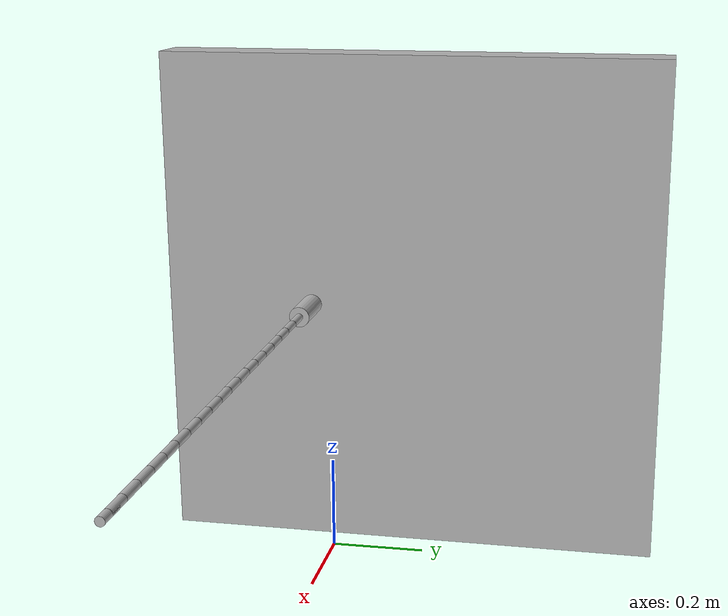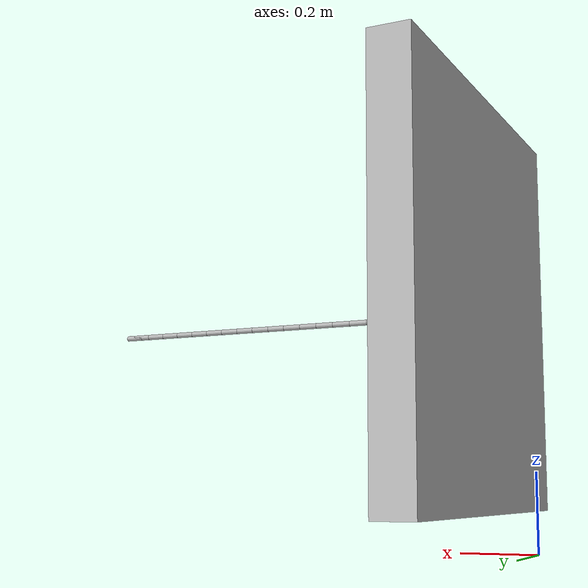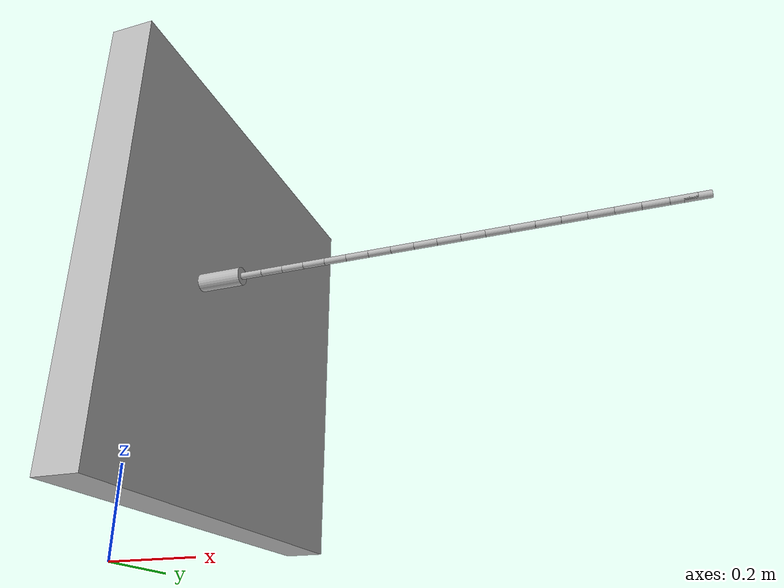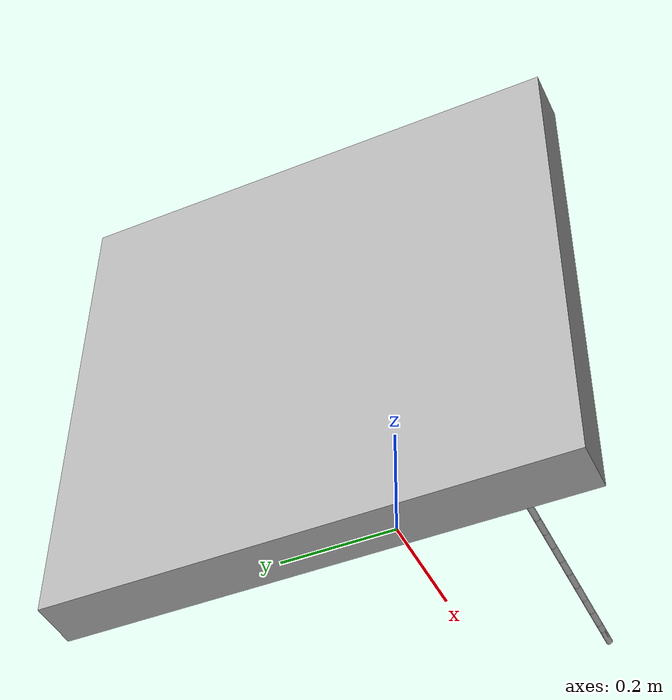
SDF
<?xml version="1.0" ?>
<sdf version="1.5">
  <model name="cable_fixed">
    <pose>0.2 0 0.6 0 0 0</pose>
    <joint name="joint_01_world" type="fixed">
      <child>plug</child>
      <parent>world</parent>
      <axis>
        <xyz>0.500000 0.000000 0.200000</xyz>
        <dynamics>
          <damping>10.000000</damping>
          <friction>0.000000</friction>
        </dynamics>
        <use_parent_model_frame>true</use_parent_model_frame>
      </axis>
    </joint>
    <link name="plug">
      <pose>0.000000 0.000000 0.000000 0.000000 1.570796 0.000000</pose>
      <inertial>
        <pose>0.000000 0.000000 0.000000 0.000000 0.000000 0.000000</pose>
        <mass>0.100000</mass>
        <inertia>
          <ixx>0.010000</ixx>
          <ixy>0.000000</ixy>
          <ixz>0.000000</ixz>
          <iyy>0.010000</iyy>
          <iyz>0.000000</iyz>
          <izz>0.010000</izz>
        </inertia>
      </inertial>
      <collision name="plug_collision">
        <pose>-0.000000 0.000000 0.000000 0.000000 0.000000 0.000000</pose>
        <geometry>
          <cylinder>
            <radius>0.02</radius>
            <length>0.1</length>
          </cylinder>
        </geometry>
      </collision>
      <visual name="plug_vis">
        <pose>-0.000000 0.000000 0.000000 0.000000 0.000000 0.000000</pose>
        <geometry>
          <cylinder>
            <radius>0.02</radius>
            <length>0.1</length>
          </cylinder>
        </geometry>
      </visual>
      <velocity_decay />
    </link>

    <link name="link_01">

      <pose>0.050000 0.000000 0.000000 0.000000 -0.000000 0.000000</pose>
      <inertial>
        <pose>0.000000 0.000000 0.000000 0.000000 -0.000000 0.000000</pose>
        <mass>0.100000</mass>
        <inertia>
          <ixx>0.010000</ixx>
          <ixy>0.000000</ixy>
          <ixz>0.000000</ixz>
          <iyy>0.010000</iyy>
          <iyz>0.000000</iyz>
          <izz>0.010000</izz>
        </inertia>
      </inertial>
      <collision name="link_01_collision">
        <pose>0.025000 0.000000 0.000000 0.000000 1.570790 0.000000</pose>
        <geometry>
          <cylinder>
            <length>0.050000</length>
            <radius>0.007500</radius>
          </cylinder>
        </geometry>
      </collision>
      <visual name="link_01_vis">
        <pose>0.025000 0.000000 0.000000 0.000000 1.570790 0.000000</pose>
        <geometry>
          <cylinder>
            <length>0.050000</length>
            <radius>0.007500</radius>
          </cylinder>
        </geometry>
      </visual>
      <velocity_decay />
    </link>
    <joint name="joint_plug" type="fixed">
      <child>link_01</child>
      <parent>plug</parent>
      <axis>
        <xyz>0.000000 1.000000 0.000000</xyz>
        <limit>
          <lower>-0.700000</lower>
          <upper>0.700000</upper>
        </limit>
        <dynamics>
          <damping>10.000000</damping>
          <friction>0.000000</friction>
        </dynamics>
        <use_parent_model_frame>true</use_parent_model_frame>
      </axis>
    </joint>
    <link name="sphere_02">
      <gravity>false</gravity>
      <pose>0.100000 0.000000 0.000000 0.000000 -0.000000 0.000000</pose>
      <inertial>
        <pose>0.000000 0.000000 0.000000 0.000000 -0.000000 0.000000</pose>
        <mass>0.100000</mass>
        <inertia>
          <ixx>0.010000</ixx>
          <ixy>0.000000</ixy>
          <ixz>0.000000</ixz>
          <iyy>0.010000</iyy>
          <iyz>0.000000</iyz>
          <izz>0.010000</izz>
        </inertia>
      </inertial>
      <collision name="sphere_02_collision">
        <pose>0.000000 0.000000 0.000000 0.000000 -0.000000 0.000000</pose>
        <geometry>
          <sphere>
            <radius>0.007500</radius>
          </sphere>
        </geometry>
      </collision>
      <visual name="sphere_02_vis">
        <pose>0.000000 0.000000 0.000000 0.000000 -0.000000 0.000000</pose>
        <geometry>
          <sphere>
            <radius>0.007500</radius>
          </sphere>
        </geometry>
      </visual>
      <velocity_decay />
    </link>
    <joint name="joint_02_1" type="revolute">
      <child>sphere_02</child>
      <parent>link_01</parent>
      <axis>
        <xyz>0.000000 0.000000 1.000000</xyz>
        <limit>
          <lower>-0.700000</lower>
          <upper>0.700000</upper>
        </limit>
        <dynamics>
          <damping>10.000000</damping>
          <friction>0.000000</friction>
        </dynamics>
        <use_parent_model_frame>true</use_parent_model_frame>
      </axis>
    </joint>
    <link name="link_02">

      <pose>0.100000 0.000000 0.000000 0.000000 -0.000000 0.000000</pose>
      <inertial>
        <pose>0.000000 0.000000 0.000000 0.000000 -0.000000 0.000000</pose>
        <mass>0.100000</mass>
        <inertia>
          <ixx>0.010000</ixx>
          <ixy>0.000000</ixy>
          <ixz>0.000000</ixz>
          <iyy>0.010000</iyy>
          <iyz>0.000000</iyz>
          <izz>0.010000</izz>
        </inertia>
      </inertial>
      <collision name="link_02_collision">
        <pose>0.025000 0.000000 0.000000 0.000000 1.570790 0.000000</pose>
        <geometry>
          <cylinder>
            <length>0.050000</length>
            <radius>0.007500</radius>
          </cylinder>
        </geometry>
      </collision>
      <visual name="link_02_vis">
        <pose>0.025000 0.000000 0.000000 0.000000 1.570790 0.000000</pose>
        <geometry>
          <cylinder>
            <length>0.050000</length>
            <radius>0.007500</radius>
          </cylinder>
        </geometry>
      </visual>
      <velocity_decay />
    </link>
    <joint name="joint_02_2" type="revolute">
      <child>link_02</child>
      <parent>sphere_02</parent>
      <axis>
        <xyz>0.000000 1.000000 0.000000</xyz>
        <limit>
          <lower>-0.700000</lower>
          <upper>0.700000</upper>
        </limit>
        <dynamics>
          <damping>10.000000</damping>
          <friction>0.000000</friction>
	  <spring_stiffness>5.000000</spring_stiffness>
        </dynamics>
        <use_parent_model_frame>true</use_parent_model_frame>
      </axis>
    </joint>
    <link name="sphere_03">
      <gravity>false</gravity>
      <pose>0.150000 0.000000 0.000000 0.000000 -0.000000 0.000000</pose>
      <inertial>
        <pose>0.000000 0.000000 0.000000 0.000000 -0.000000 0.000000</pose>
        <mass>0.100000</mass>
        <inertia>
          <ixx>0.010000</ixx>
          <ixy>0.000000</ixy>
          <ixz>0.000000</ixz>
          <iyy>0.010000</iyy>
          <iyz>0.000000</iyz>
          <izz>0.010000</izz>
        </inertia>
      </inertial>
      <collision name="sphere_03_collision">
        <pose>0.000000 0.000000 0.000000 0.000000 -0.000000 0.000000</pose>
        <geometry>
          <sphere>
            <radius>0.007500</radius>
          </sphere>
        </geometry>
      </collision>
      <visual name="sphere_03_vis">
        <pose>0.000000 0.000000 0.000000 0.000000 -0.000000 0.000000</pose>
        <geometry>
          <sphere>
            <radius>0.007500</radius>
          </sphere>
        </geometry>
      </visual>
      <velocity_decay />
    </link>
    <joint name="joint_03_1" type="revolute">
      <child>sphere_03</child>
      <parent>link_02</parent>
      <axis>
        <xyz>0.000000 0.000000 1.000000</xyz>
        <limit>
          <lower>-0.700000</lower>
          <upper>0.700000</upper>
        </limit>
        <dynamics>
          <damping>10.000000</damping>
          <friction>0.000000</friction>
        </dynamics>
        <use_parent_model_frame>true</use_parent_model_frame>
      </axis>
    </joint>
    <link name="link_03">

      <pose>0.150000 0.000000 0.000000 0.000000 -0.000000 0.000000</pose>
      <inertial>
        <pose>0.000000 0.000000 0.000000 0.000000 -0.000000 0.000000</pose>
        <mass>0.100000</mass>
        <inertia>
          <ixx>0.010000</ixx>
          <ixy>0.000000</ixy>
          <ixz>0.000000</ixz>
          <iyy>0.010000</iyy>
          <iyz>0.000000</iyz>
          <izz>0.010000</izz>
        </inertia>
      </inertial>
      <collision name="link_03_collision">
        <pose>0.025000 0.000000 0.000000 0.000000 1.570790 0.000000</pose>
        <geometry>
          <cylinder>
            <length>0.050000</length>
            <radius>0.007500</radius>
          </cylinder>
        </geometry>
      </collision>
      <visual name="link_03_vis">
        <pose>0.025000 0.000000 0.000000 0.000000 1.570790 0.000000</pose>
        <geometry>
          <cylinder>
            <length>0.050000</length>
            <radius>0.007500</radius>
          </cylinder>
        </geometry>
      </visual>
      <velocity_decay />
    </link>
    <joint name="joint_03_2" type="revolute">
      <child>link_03</child>
      <parent>sphere_03</parent>
      <axis>
        <xyz>0.000000 1.000000 0.000000</xyz>
        <limit>
          <lower>-0.700000</lower>
          <upper>0.700000</upper>
        </limit>
        <dynamics>
          <damping>10.000000</damping>
          <friction>0.000000</friction>
          <spring_stiffness>5.000000</spring_stiffness>
        </dynamics>
        <use_parent_model_frame>true</use_parent_model_frame>
      </axis>
    </joint>
    <link name="sphere_04">
      <gravity>false</gravity>
      <pose>0.200000 0.000000 0.000000 0.000000 -0.000000 0.000000</pose>
      <inertial>
        <pose>0.000000 0.000000 0.000000 0.000000 -0.000000 0.000000</pose>
        <mass>0.100000</mass>
        <inertia>
          <ixx>0.010000</ixx>
          <ixy>0.000000</ixy>
          <ixz>0.000000</ixz>
          <iyy>0.010000</iyy>
          <iyz>0.000000</iyz>
          <izz>0.010000</izz>
        </inertia>
      </inertial>
      <collision name="sphere_04_collision">
        <pose>0.000000 0.000000 0.000000 0.000000 -0.000000 0.000000</pose>
        <geometry>
          <sphere>
            <radius>0.007500</radius>
          </sphere>
        </geometry>
      </collision>
      <visual name="sphere_04_vis">
        <pose>0.000000 0.000000 0.000000 0.000000 -0.000000 0.000000</pose>
        <geometry>
          <sphere>
            <radius>0.007500</radius>
          </sphere>
        </geometry>
      </visual>
      <velocity_decay />
    </link>
    <joint name="joint_04_1" type="revolute">
      <child>sphere_04</child>
      <parent>link_03</parent>
      <axis>
        <xyz>0.000000 0.000000 1.000000</xyz>
        <limit>
          <lower>-0.700000</lower>
          <upper>0.700000</upper>
        </limit>
        <dynamics>
          <damping>10.000000</damping>
          <friction>0.000000</friction>
        </dynamics>
        <use_parent_model_frame>true</use_parent_model_frame>
      </axis>
    </joint>
    <link name="link_04">

      <pose>0.200000 0.000000 0.000000 0.000000 -0.000000 0.000000</pose>
      <inertial>
        <pose>0.000000 0.000000 0.000000 0.000000 -0.000000 0.000000</pose>
        <mass>0.100000</mass>
        <inertia>
          <ixx>0.010000</ixx>
          <ixy>0.000000</ixy>
          <ixz>0.000000</ixz>
          <iyy>0.010000</iyy>
          <iyz>0.000000</iyz>
          <izz>0.010000</izz>
        </inertia>
      </inertial>
      <collision name="link_04_collision">
        <pose>0.025000 0.000000 0.000000 0.000000 1.570790 0.000000</pose>
        <geometry>
          <cylinder>
            <length>0.050000</length>
            <radius>0.007500</radius>
          </cylinder>
        </geometry>
      </collision>
      <visual name="link_04_vis">
        <pose>0.025000 0.000000 0.000000 0.000000 1.570790 0.000000</pose>
        <geometry>
          <cylinder>
            <length>0.050000</length>
            <radius>0.007500</radius>
          </cylinder>
        </geometry>
      </visual>
      <velocity_decay />
    </link>
    <joint name="joint_04_2" type="revolute">
      <child>link_04</child>
      <parent>sphere_04</parent>
      <axis>
        <xyz>0.000000 1.000000 0.000000</xyz>
        <limit>
          <lower>-0.700000</lower>
          <upper>0.700000</upper>
        </limit>
        <dynamics>
          <damping>10.000000</damping>
          <friction>0.000000</friction>
	  <spring_stiffness>5.000000</spring_stiffness>
        </dynamics>
        <use_parent_model_frame>true</use_parent_model_frame>
      </axis>
    </joint>
    <link name="sphere_05">
      <gravity>false</gravity>
      <pose>0.250000 0.000000 0.000000 0.000000 -0.000000 0.000000</pose>
      <inertial>
        <pose>0.000000 0.000000 0.000000 0.000000 -0.000000 0.000000</pose>
        <mass>0.100000</mass>
        <inertia>
          <ixx>0.010000</ixx>
          <ixy>0.000000</ixy>
          <ixz>0.000000</ixz>
          <iyy>0.010000</iyy>
          <iyz>0.000000</iyz>
          <izz>0.010000</izz>
        </inertia>
      </inertial>
      <collision name="sphere_05_collision">
        <pose>0.000000 0.000000 0.000000 0.000000 -0.000000 0.000000</pose>
        <geometry>
          <sphere>
            <radius>0.007500</radius>
          </sphere>
        </geometry>
      </collision>
      <visual name="sphere_05_vis">
        <pose>0.000000 0.000000 0.000000 0.000000 -0.000000 0.000000</pose>
        <geometry>
          <sphere>
            <radius>0.007500</radius>
          </sphere>
        </geometry>
      </visual>
      <velocity_decay />
    </link>
    <joint name="joint_05_1" type="revolute">
      <child>sphere_05</child>
      <parent>link_04</parent>
      <axis>
        <xyz>0.000000 0.000000 1.000000</xyz>
        <limit>
          <lower>-0.700000</lower>
          <upper>0.700000</upper>
        </limit>
        <dynamics>
          <damping>10.000000</damping>
          <friction>0.000000</friction>
        </dynamics>
        <use_parent_model_frame>true</use_parent_model_frame>
      </axis>
    </joint>
    <link name="link_05">

      <pose>0.250000 0.000000 0.000000 0.000000 -0.000000 0.000000</pose>
      <inertial>
        <pose>0.000000 0.000000 0.000000 0.000000 -0.000000 0.000000</pose>
        <mass>0.100000</mass>
        <inertia>
          <ixx>0.010000</ixx>
          <ixy>0.000000</ixy>
          <ixz>0.000000</ixz>
          <iyy>0.010000</iyy>
          <iyz>0.000000</iyz>
          <izz>0.010000</izz>
        </inertia>
      </inertial>
      <collision name="link_05_collision">
        <pose>0.025000 0.000000 0.000000 0.000000 1.570790 0.000000</pose>
        <geometry>
          <cylinder>
            <length>0.050000</length>
            <radius>0.007500</radius>
          </cylinder>
        </geometry>
      </collision>
      <visual name="link_05_vis">
        <pose>0.025000 0.000000 0.000000 0.000000 1.570790 0.000000</pose>
        <geometry>
          <cylinder>
            <length>0.050000</length>
            <radius>0.007500</radius>
          </cylinder>
        </geometry>
      </visual>
      <velocity_decay />
    </link>
    <joint name="joint_05_2" type="revolute">
      <child>link_05</child>
      <parent>sphere_05</parent>
      <axis>
        <xyz>0.000000 1.000000 0.000000</xyz>
        <limit>
          <lower>-0.700000</lower>
          <upper>0.700000</upper>
        </limit>
        <dynamics>
          <damping>10.000000</damping>
          <friction>0.000000</friction>
          <spring_stiffness>5.000000</spring_stiffness>
        </dynamics>
        <use_parent_model_frame>true</use_parent_model_frame>
      </axis>
    </joint>
    <link name="sphere_06">
      <gravity>false</gravity>
      <pose>0.300000 0.000000 0.000000 0.000000 -0.000000 0.000000</pose>
      <inertial>
        <pose>0.000000 0.000000 0.000000 0.000000 -0.000000 0.000000</pose>
        <mass>0.100000</mass>
        <inertia>
          <ixx>0.010000</ixx>
          <ixy>0.000000</ixy>
          <ixz>0.000000</ixz>
          <iyy>0.010000</iyy>
          <iyz>0.000000</iyz>
          <izz>0.010000</izz>
        </inertia>
      </inertial>
      <collision name="sphere_06_collision">
        <pose>0.000000 0.000000 0.000000 0.000000 -0.000000 0.000000</pose>
        <geometry>
          <sphere>
            <radius>0.007500</radius>
          </sphere>
        </geometry>
      </collision>
      <visual name="sphere_06_vis">
        <pose>0.000000 0.000000 0.000000 0.000000 -0.000000 0.000000</pose>
        <geometry>
          <sphere>
            <radius>0.007500</radius>
          </sphere>
        </geometry>
      </visual>
      <velocity_decay />
    </link>
    <joint name="joint_06_1" type="revolute">
      <child>sphere_06</child>
      <parent>link_05</parent>
      <axis>
        <xyz>0.000000 0.000000 1.000000</xyz>
        <limit>
          <lower>-0.700000</lower>
          <upper>0.700000</upper>
        </limit>
        <dynamics>
          <damping>10.000000</damping>
          <friction>0.000000</friction>
        </dynamics>
        <use_parent_model_frame>true</use_parent_model_frame>
      </axis>
    </joint>
    <link name="link_06">

      <pose>0.300000 0.000000 0.000000 0.000000 -0.000000 0.000000</pose>
      <inertial>
        <pose>0.000000 0.000000 0.000000 0.000000 -0.000000 0.000000</pose>
        <mass>0.100000</mass>
        <inertia>
          <ixx>0.010000</ixx>
          <ixy>0.000000</ixy>
          <ixz>0.000000</ixz>
          <iyy>0.010000</iyy>
          <iyz>0.000000</iyz>
          <izz>0.010000</izz>
        </inertia>
      </inertial>
      <collision name="link_06_collision">
        <pose>0.025000 0.000000 0.000000 0.000000 1.570790 0.000000</pose>
        <geometry>
          <cylinder>
            <length>0.050000</length>
            <radius>0.007500</radius>
          </cylinder>
        </geometry>
      </collision>
      <visual name="link_06_vis">
        <pose>0.025000 0.000000 0.000000 0.000000 1.570790 0.000000</pose>
        <geometry>
          <cylinder>
            <length>0.050000</length>
            <radius>0.007500</radius>
          </cylinder>
        </geometry>
      </visual>
      <velocity_decay />
    </link>
    <joint name="joint_06_2" type="revolute">
      <child>link_06</child>
      <parent>sphere_06</parent>
      <axis>
        <xyz>0.000000 1.000000 0.000000</xyz>
        <limit>
          <lower>-0.700000</lower>
          <upper>0.700000</upper>
        </limit>
        <dynamics>
          <damping>10.000000</damping>
          <friction>0.000000</friction>
        </dynamics>
        <use_parent_model_frame>true</use_parent_model_frame>
      </axis>
    </joint>
    <link name="sphere_07">
      <gravity>false</gravity>
      <pose>0.350000 0.000000 0.000000 0.000000 -0.000000 0.000000</pose>
      <inertial>
        <pose>0.000000 0.000000 0.000000 0.000000 -0.000000 0.000000</pose>
        <mass>0.100000</mass>
        <inertia>
          <ixx>0.010000</ixx>
          <ixy>0.000000</ixy>
          <ixz>0.000000</ixz>
          <iyy>0.010000</iyy>
          <iyz>0.000000</iyz>
          <izz>0.010000</izz>
        </inertia>
      </inertial>
      <collision name="sphere_07_collision">
        <pose>0.000000 0.000000 0.000000 0.000000 -0.000000 0.000000</pose>
        <geometry>
          <sphere>
            <radius>0.007500</radius>
          </sphere>
        </geometry>
      </collision>
      <visual name="sphere_07_vis">
        <pose>0.000000 0.000000 0.000000 0.000000 -0.000000 0.000000</pose>
        <geometry>
          <sphere>
            <radius>0.007500</radius>
          </sphere>
        </geometry>
      </visual>
      <velocity_decay />
    </link>
    <joint name="joint_07_1" type="revolute">
      <child>sphere_07</child>
      <parent>link_06</parent>
      <axis>
        <xyz>0.000000 0.000000 1.000000</xyz>
        <limit>
          <lower>-0.700000</lower>
          <upper>0.700000</upper>
        </limit>
        <dynamics>
          <damping>10.000000</damping>
          <friction>0.000000</friction>
        </dynamics>
        <use_parent_model_frame>true</use_parent_model_frame>
      </axis>
    </joint>
    <link name="link_07">

      <pose>0.350000 0.000000 0.000000 0.000000 -0.000000 0.000000</pose>
      <inertial>
        <pose>0.000000 0.000000 0.000000 0.000000 -0.000000 0.000000</pose>
        <mass>0.100000</mass>
        <inertia>
          <ixx>0.010000</ixx>
          <ixy>0.000000</ixy>
          <ixz>0.000000</ixz>
          <iyy>0.010000</iyy>
          <iyz>0.000000</iyz>
          <izz>0.010000</izz>
        </inertia>
      </inertial>
      <collision name="link_07_collision">
        <pose>0.025000 0.000000 0.000000 0.000000 1.570790 0.000000</pose>
        <geometry>
          <cylinder>
            <length>0.050000</length>
            <radius>0.007500</radius>
          </cylinder>
        </geometry>
      </collision>
      <visual name="link_07_vis">
        <pose>0.025000 0.000000 0.000000 0.000000 1.570790 0.000000</pose>
        <geometry>
          <cylinder>
            <length>0.050000</length>
            <radius>0.007500</radius>
          </cylinder>
        </geometry>
      </visual>
      <velocity_decay />
    </link>
    <joint name="joint_07_2" type="revolute">
      <child>link_07</child>
      <parent>sphere_07</parent>
      <axis>
        <xyz>0.000000 1.000000 0.000000</xyz>
        <limit>
          <lower>-0.700000</lower>
          <upper>0.700000</upper>
        </limit>
        <dynamics>
          <damping>10.000000</damping>
          <friction>0.000000</friction>
        </dynamics>
        <use_parent_model_frame>true</use_parent_model_frame>
      </axis>
    </joint>
    <link name="sphere_08">
      <gravity>false</gravity>
      <pose>0.400000 0.000000 0.000000 0.000000 -0.000000 0.000000</pose>
      <inertial>
        <pose>0.000000 0.000000 0.000000 0.000000 -0.000000 0.000000</pose>
        <mass>0.100000</mass>
        <inertia>
          <ixx>0.010000</ixx>
          <ixy>0.000000</ixy>
          <ixz>0.000000</ixz>
          <iyy>0.010000</iyy>
          <iyz>0.000000</iyz>
          <izz>0.010000</izz>
        </inertia>
      </inertial>
      <collision name="sphere_08_collision">
        <pose>0.000000 0.000000 0.000000 0.000000 -0.000000 0.000000</pose>
        <geometry>
          <sphere>
            <radius>0.007500</radius>
          </sphere>
        </geometry>
      </collision>
      <visual name="sphere_08_vis">
        <pose>0.000000 0.000000 0.000000 0.000000 -0.000000 0.000000</pose>
        <geometry>
          <sphere>
            <radius>0.007500</radius>
          </sphere>
        </geometry>
      </visual>
      <velocity_decay />
    </link>
    <joint name="joint_08_1" type="revolute">
      <child>sphere_08</child>
      <parent>link_07</parent>
      <axis>
        <xyz>0.000000 0.000000 1.000000</xyz>
        <limit>
          <lower>-0.700000</lower>
          <upper>0.700000</upper>
        </limit>
        <dynamics>
          <damping>10.000000</damping>
          <friction>0.000000</friction>
        </dynamics>
        <use_parent_model_frame>true</use_parent_model_frame>
      </axis>
    </joint>
    <link name="link_08">

      <pose>0.400000 0.000000 0.000000 0.000000 -0.000000 0.000000</pose>
      <inertial>
        <pose>0.000000 0.000000 0.000000 0.000000 -0.000000 0.000000</pose>
        <mass>0.100000</mass>
        <inertia>
          <ixx>0.010000</ixx>
          <ixy>0.000000</ixy>
          <ixz>0.000000</ixz>
          <iyy>0.010000</iyy>
          <iyz>0.000000</iyz>
          <izz>0.010000</izz>
        </inertia>
      </inertial>
      <collision name="link_08_collision">
        <pose>0.025000 0.000000 0.000000 0.000000 1.570790 0.000000</pose>
        <geometry>
          <cylinder>
            <length>0.050000</length>
            <radius>0.007500</radius>
          </cylinder>
        </geometry>
      </collision>
      <visual name="link_08_vis">
        <pose>0.025000 0.000000 0.000000 0.000000 1.570790 0.000000</pose>
        <geometry>
          <cylinder>
            <length>0.050000</length>
            <radius>0.007500</radius>
          </cylinder>
        </geometry>
      </visual>
      <velocity_decay />
    </link>
    <joint name="joint_08_2" type="revolute">
      <child>link_08</child>
      <parent>sphere_08</parent>
      <axis>
        <xyz>0.000000 1.000000 0.000000</xyz>
        <limit>
          <lower>-0.700000</lower>
          <upper>0.700000</upper>
        </limit>
        <dynamics>
          <damping>10.000000</damping>
          <friction>0.000000</friction>
        </dynamics>
        <use_parent_model_frame>true</use_parent_model_frame>
      </axis>
    </joint>
    <link name="sphere_09">
      <gravity>false</gravity>
      <pose>0.450000 0.000000 0.000000 0.000000 -0.000000 0.000000</pose>
      <inertial>
        <pose>0.000000 0.000000 0.000000 0.000000 -0.000000 0.000000</pose>
        <mass>0.100000</mass>
        <inertia>
          <ixx>0.010000</ixx>
          <ixy>0.000000</ixy>
          <ixz>0.000000</ixz>
          <iyy>0.010000</iyy>
          <iyz>0.000000</iyz>
          <izz>0.010000</izz>
        </inertia>
      </inertial>
      <collision name="sphere_09_collision">
        <pose>0.000000 0.000000 0.000000 0.000000 -0.000000 0.000000</pose>
        <geometry>
          <sphere>
            <radius>0.007500</radius>
          </sphere>
        </geometry>
      </collision>
      <visual name="sphere_09_vis">
        <pose>0.000000 0.000000 0.000000 0.000000 -0.000000 0.000000</pose>
        <geometry>
          <sphere>
            <radius>0.007500</radius>
          </sphere>
        </geometry>
      </visual>
      <velocity_decay />
    </link>
    <joint name="joint_09_1" type="revolute">
      <child>sphere_09</child>
      <parent>link_08</parent>
      <axis>
        <xyz>0.000000 0.000000 1.000000</xyz>
        <limit>
          <lower>-0.700000</lower>
          <upper>0.700000</upper>
        </limit>
        <dynamics>
          <damping>10.000000</damping>
          <friction>0.000000</friction>
        </dynamics>
        <use_parent_model_frame>true</use_parent_model_frame>
      </axis>
    </joint>
    <link name="link_09">

      <pose>0.450000 0.000000 0.000000 0.000000 -0.000000 0.000000</pose>
      <inertial>
        <pose>0.000000 0.000000 0.000000 0.000000 -0.000000 0.000000</pose>
        <mass>0.100000</mass>
        <inertia>
          <ixx>0.010000</ixx>
          <ixy>0.000000</ixy>
          <ixz>0.000000</ixz>
          <iyy>0.010000</iyy>
          <iyz>0.000000</iyz>
          <izz>0.010000</izz>
        </inertia>
      </inertial>
      <collision name="link_09_collision">
        <pose>0.025000 0.000000 0.000000 0.000000 1.570790 0.000000</pose>
        <geometry>
          <cylinder>
            <length>0.050000</length>
            <radius>0.007500</radius>
          </cylinder>
        </geometry>
      </collision>
      <visual name="link_09_vis">
        <pose>0.025000 0.000000 0.000000 0.000000 1.570790 0.000000</pose>
        <geometry>
          <cylinder>
            <length>0.050000</length>
            <radius>0.007500</radius>
          </cylinder>
        </geometry>
      </visual>
      <velocity_decay />
    </link>
    <joint name="joint_09_2" type="revolute">
      <child>link_09</child>
      <parent>sphere_09</parent>
      <axis>
        <xyz>0.000000 1.000000 0.000000</xyz>
        <limit>
          <lower>-0.700000</lower>
          <upper>0.700000</upper>
        </limit>
        <dynamics>
          <damping>10.000000</damping>
          <friction>0.000000</friction>
        </dynamics>
        <use_parent_model_frame>true</use_parent_model_frame>
      </axis>
    </joint>
    <link name="sphere_10">
      <gravity>false</gravity>
      <pose>0.500000 0.000000 0.000000 0.000000 -0.000000 0.000000</pose>
      <inertial>
        <pose>0.000000 0.000000 0.000000 0.000000 -0.000000 0.000000</pose>
        <mass>0.100000</mass>
        <inertia>
          <ixx>0.010000</ixx>
          <ixy>0.000000</ixy>
          <ixz>0.000000</ixz>
          <iyy>0.010000</iyy>
          <iyz>0.000000</iyz>
          <izz>0.010000</izz>
        </inertia>
      </inertial>
      <collision name="sphere_10_collision">
        <pose>0.000000 0.000000 0.000000 0.000000 -0.000000 0.000000</pose>
        <geometry>
          <sphere>
            <radius>0.007500</radius>
          </sphere>
        </geometry>
      </collision>
      <visual name="sphere_10_vis">
        <pose>0.000000 0.000000 0.000000 0.000000 -0.000000 0.000000</pose>
        <geometry>
          <sphere>
            <radius>0.007500</radius>
          </sphere>
        </geometry>
      </visual>
      <velocity_decay />
    </link>
    <joint name="joint_10_1" type="revolute">
      <child>sphere_10</child>
      <parent>link_09</parent>
      <axis>
        <xyz>0.000000 0.000000 1.000000</xyz>
        <limit>
          <lower>-0.700000</lower>
          <upper>0.700000</upper>
        </limit>
        <dynamics>
          <damping>10.000000</damping>
          <friction>0.000000</friction>
        </dynamics>
        <use_parent_model_frame>true</use_parent_model_frame>
      </axis>
    </joint>

    <link name="link_10">

      <pose>0.500000 0.000000 0.000000 0.000000 -0.000000 0.000000</pose>
      <inertial>
        <pose>0.000000 0.000000 0.000000 0.000000 -0.000000 0.000000</pose>
        <mass>0.100000</mass>
        <inertia>
          <ixx>0.010000</ixx>
          <ixy>0.000000</ixy>
          <ixz>0.000000</ixz>
          <iyy>0.010000</iyy>
          <iyz>0.000000</iyz>
          <izz>0.010000</izz>
        </inertia>
      </inertial>
      <collision name="link_10_collision">
        <pose>0.025000 0.000000 0.000000 0.000000 1.570790 0.000000</pose>
        <geometry>
          <cylinder>
            <length>0.050000</length>
            <radius>0.007500</radius>
          </cylinder>
        </geometry>
      </collision>
      <visual name="link_10_vis">
        <pose>0.025000 0.000000 0.000000 0.000000 1.570790 0.000000</pose>
        <geometry>
          <cylinder>
            <length>0.050000</length>
            <radius>0.007500</radius>
          </cylinder>
        </geometry>
      </visual>
      <velocity_decay />
    </link>
    <joint name="joint_10_2" type="revolute">
      <child>link_10</child>
      <parent>sphere_10</parent>
      <axis>
        <xyz>0.000000 1.000000 0.000000</xyz>
        <limit>
          <lower>-0.700000</lower>
          <upper>0.700000</upper>
        </limit>
        <dynamics>
          <damping>10.000000</damping>
          <friction>0.000000</friction>
        </dynamics>
        <use_parent_model_frame>true</use_parent_model_frame>
      </axis>
    </joint>
    <link name="sphere_11">
      <gravity>false</gravity>
      <pose>0.550000 0.000000 0.000000 0.000000 -0.000000 0.000000</pose>
      <inertial>
        <pose>0.000000 0.000000 0.000000 0.000000 -0.000000 0.000000</pose>
        <mass>0.100000</mass>
        <inertia>
          <ixx>0.010000</ixx>
          <ixy>0.000000</ixy>
          <ixz>0.000000</ixz>
          <iyy>0.010000</iyy>
          <iyz>0.000000</iyz>
          <izz>0.010000</izz>
        </inertia>
      </inertial>
      <collision name="sphere_11_collision">
        <pose>0.000000 0.000000 0.000000 0.000000 -0.000000 0.000000</pose>
        <geometry>
          <sphere>
            <radius>0.007500</radius>
          </sphere>
        </geometry>
      </collision>
      <visual name="sphere_11_vis">
        <pose>0.000000 0.000000 0.000000 0.000000 -0.000000 0.000000</pose>
        <geometry>
          <sphere>
            <radius>0.007500</radius>
          </sphere>
        </geometry>
      </visual>
      <velocity_decay />
    </link>
    <joint name="joint_11_1" type="revolute">
      <child>sphere_11</child>
      <parent>link_10</parent>
      <axis>
        <xyz>0.000000 0.000000 1.000000</xyz>
        <limit>
          <lower>-0.700000</lower>
          <upper>0.700000</upper>
        </limit>
        <dynamics>
          <damping>10.000000</damping>
          <friction>0.000000</friction>
        </dynamics>
        <use_parent_model_frame>true</use_parent_model_frame>
      </axis>
    </joint>

<link name="link_11">

      <pose>0.550000 0.000000 0.000000 0.000000 -0.000000 0.000000</pose>
      <inertial>
        <pose>0.000000 0.000000 0.000000 0.000000 -0.000000 0.000000</pose>
        <mass>0.100000</mass>
        <inertia>
          <ixx>0.010000</ixx>
          <ixy>0.000000</ixy>
          <ixz>0.000000</ixz>
          <iyy>0.010000</iyy>
          <iyz>0.000000</iyz>
          <izz>0.010000</izz>
        </inertia>
      </inertial>
      <collision name="link_11_collision">
        <pose>0.025000 0.000000 0.000000 0.000000 1.570790 0.000000</pose>
        <geometry>
          <cylinder>
            <length>0.050000</length>
            <radius>0.007500</radius>
          </cylinder>
        </geometry>
      </collision>
      <visual name="link_11_vis">
        <pose>0.025000 0.000000 0.000000 0.000000 1.570790 0.000000</pose>
        <geometry>
          <cylinder>
            <length>0.050000</length>
            <radius>0.007500</radius>
          </cylinder>
        </geometry>
      </visual>
      <velocity_decay />
    </link>
    <joint name="joint_11_2" type="revolute">
      <child>link_11</child>
      <parent>sphere_11</parent>
      <axis>
        <xyz>0.000000 1.000000 0.000000</xyz>
        <limit>
          <lower>-0.700000</lower>
          <upper>0.700000</upper>
        </limit>
        <dynamics>
          <damping>10.000000</damping>
          <friction>0.000000</friction>
        </dynamics>
        <use_parent_model_frame>true</use_parent_model_frame>
      </axis>
    </joint>
    <link name="sphere_12">
      <gravity>false</gravity>
      <pose>0.600000 0.000000 0.000000 0.000000 -0.000000 0.000000</pose>
      <inertial>
        <pose>0.000000 0.000000 0.000000 0.000000 -0.000000 0.000000</pose>
        <mass>0.100000</mass>
        <inertia>
          <ixx>0.010000</ixx>
          <ixy>0.000000</ixy>
          <ixz>0.000000</ixz>
          <iyy>0.010000</iyy>
          <iyz>0.000000</iyz>
          <izz>0.010000</izz>
        </inertia>
      </inertial>
      <collision name="sphere_12_collision">
        <pose>0.000000 0.000000 0.000000 0.000000 -0.000000 0.000000</pose>
        <geometry>
          <sphere>
            <radius>0.007500</radius>
          </sphere>
        </geometry>
      </collision>
      <visual name="sphere_12_vis">
        <pose>0.000000 0.000000 0.000000 0.000000 -0.000000 0.000000</pose>
        <geometry>
          <sphere>
            <radius>0.007500</radius>
          </sphere>
        </geometry>
      </visual>
      <velocity_decay />
    </link>
    <joint name="joint_12_1" type="revolute">
      <child>sphere_12</child>
      <parent>link_11</parent>
      <axis>
        <xyz>0.000000 0.000000 1.000000</xyz>
        <limit>
          <lower>-0.700000</lower>
          <upper>0.700000</upper>
        </limit>
        <dynamics>
          <damping>10.000000</damping>
          <friction>0.000000</friction>
        </dynamics>
        <use_parent_model_frame>true</use_parent_model_frame>
      </axis>
    </joint>

<link name="link_12">

      <pose>0.600000 0.000000 0.000000 0.000000 -0.000000 0.000000</pose>
      <inertial>
        <pose>0.000000 0.000000 0.000000 0.000000 -0.000000 0.000000</pose>
        <mass>0.100000</mass>
        <inertia>
          <ixx>0.010000</ixx>
          <ixy>0.000000</ixy>
          <ixz>0.000000</ixz>
          <iyy>0.010000</iyy>
          <iyz>0.000000</iyz>
          <izz>0.010000</izz>
        </inertia>
      </inertial>
      <collision name="link_12_collision">
        <pose>0.025000 0.000000 0.000000 0.000000 1.570790 0.000000</pose>
        <geometry>
          <cylinder>
            <length>0.050000</length>
            <radius>0.007500</radius>
          </cylinder>
        </geometry>
      </collision>
      <visual name="link_12_vis">
        <pose>0.025000 0.000000 0.000000 0.000000 1.570790 0.000000</pose>
        <geometry>
          <cylinder>
            <length>0.050000</length>
            <radius>0.007500</radius>
          </cylinder>
        </geometry>
      </visual>
      <velocity_decay />
    </link>
    <joint name="joint_12_2" type="revolute">
      <child>link_12</child>
      <parent>sphere_12</parent>
      <axis>
        <xyz>0.000000 1.000000 0.000000</xyz>
        <limit>
          <lower>-0.700000</lower>
          <upper>0.700000</upper>
        </limit>
        <dynamics>
          <damping>10.000000</damping>
          <friction>0.000000</friction>
        </dynamics>
        <use_parent_model_frame>true</use_parent_model_frame>
      </axis>
    </joint>
    <link name="sphere_13">
      <gravity>false</gravity>
      <pose>0.650000 0.000000 0.000000 0.000000 -0.000000 0.000000</pose>
      <inertial>
        <pose>0.000000 0.000000 0.000000 0.000000 -0.000000 0.000000</pose>
        <mass>0.100000</mass>
        <inertia>
          <ixx>0.010000</ixx>
          <ixy>0.000000</ixy>
          <ixz>0.000000</ixz>
          <iyy>0.010000</iyy>
          <iyz>0.000000</iyz>
          <izz>0.010000</izz>
        </inertia>
      </inertial>
      <collision name="sphere_13_collision">
        <pose>0.000000 0.000000 0.000000 0.000000 -0.000000 0.000000</pose>
        <geometry>
          <sphere>
            <radius>0.007500</radius>
          </sphere>
        </geometry>
      </collision>
      <visual name="sphere_13_vis">
        <pose>0.000000 0.000000 0.000000 0.000000 -0.000000 0.000000</pose>
        <geometry>
          <sphere>
            <radius>0.007500</radius>
          </sphere>
        </geometry>
      </visual>
      <velocity_decay />
    </link>
    <joint name="joint_13_1" type="revolute">
      <child>sphere_13</child>
      <parent>link_12</parent>
      <axis>
        <xyz>0.000000 0.000000 1.000000</xyz>
        <limit>
          <lower>-0.700000</lower>
          <upper>0.700000</upper>
        </limit>
        <dynamics>
          <damping>10.000000</damping>
          <friction>0.000000</friction>
        </dynamics>
        <use_parent_model_frame>true</use_parent_model_frame>
      </axis>
    </joint>

<link name="link_13">

      <pose>0.650000 0.000000 0.000000 0.000000 -0.000000 0.000000</pose>
      <inertial>
        <pose>0.000000 0.000000 0.000000 0.000000 -0.000000 0.000000</pose>
        <mass>0.100000</mass>
        <inertia>
          <ixx>0.010000</ixx>
          <ixy>0.000000</ixy>
          <ixz>0.000000</ixz>
          <iyy>0.010000</iyy>
          <iyz>0.000000</iyz>
          <izz>0.010000</izz>
        </inertia>
      </inertial>
      <collision name="link_13_collision">
        <pose>0.025000 0.000000 0.000000 0.000000 1.570790 0.000000</pose>
        <geometry>
          <cylinder>
            <length>0.050000</length>
            <radius>0.007500</radius>
          </cylinder>
        </geometry>
      </collision>
      <visual name="link_13_vis">
        <pose>0.025000 0.000000 0.000000 0.000000 1.570790 0.000000</pose>
        <geometry>
          <cylinder>
            <length>0.050000</length>
            <radius>0.007500</radius>
          </cylinder>
        </geometry>
      </visual>
      <velocity_decay />
    </link>
    <joint name="joint_13_2" type="revolute">
      <child>link_13</child>
      <parent>sphere_13</parent>
      <axis>
        <xyz>0.000000 1.000000 0.000000</xyz>
        <limit>
          <lower>-0.700000</lower>
          <upper>0.700000</upper>
        </limit>
        <dynamics>
          <damping>10.000000</damping>
          <friction>0.000000</friction>
        </dynamics>
        <use_parent_model_frame>true</use_parent_model_frame>
      </axis>
    </joint>
    <link name="sphere_14">
      <gravity>false</gravity>
      <pose>0.700000 0.000000 0.000000 0.000000 -0.000000 0.000000</pose>
      <inertial>
        <pose>0.000000 0.000000 0.000000 0.000000 -0.000000 0.000000</pose>
        <mass>0.100000</mass>
        <inertia>
          <ixx>0.010000</ixx>
          <ixy>0.000000</ixy>
          <ixz>0.000000</ixz>
          <iyy>0.010000</iyy>
          <iyz>0.000000</iyz>
          <izz>0.010000</izz>
        </inertia>
      </inertial>
      <collision name="sphere_14_collision">
        <pose>0.000000 0.000000 0.000000 0.000000 -0.000000 0.000000</pose>
        <geometry>
          <sphere>
            <radius>0.007500</radius>
          </sphere>
        </geometry>
      </collision>
      <visual name="sphere_14_vis">
        <pose>0.000000 0.000000 0.000000 0.000000 -0.000000 0.000000</pose>
        <geometry>
          <sphere>
            <radius>0.007500</radius>
          </sphere>
        </geometry>
      </visual>
      <velocity_decay />
    </link>
    <joint name="joint_14_1" type="revolute">
      <child>sphere_14</child>
      <parent>link_13</parent>
      <axis>
        <xyz>0.000000 0.000000 1.000000</xyz>
        <limit>
          <lower>-0.700000</lower>
          <upper>0.700000</upper>
        </limit>
        <dynamics>
          <damping>10.000000</damping>
          <friction>0.000000</friction>
        </dynamics>
        <use_parent_model_frame>true</use_parent_model_frame>
      </axis>
    </joint>

<link name="link_14">

      <pose>0.700000 0.000000 0.000000 0.000000 -0.000000 0.000000</pose>
      <inertial>
        <pose>0.000000 0.000000 0.000000 0.000000 -0.000000 0.000000</pose>
        <mass>0.100000</mass>
        <inertia>
          <ixx>0.010000</ixx>
          <ixy>0.000000</ixy>
          <ixz>0.000000</ixz>
          <iyy>0.010000</iyy>
          <iyz>0.000000</iyz>
          <izz>0.010000</izz>
        </inertia>
      </inertial>
      <collision name="link_14_collision">
        <pose>0.025000 0.000000 0.000000 0.000000 1.570790 0.000000</pose>
        <geometry>
          <cylinder>
            <length>0.050000</length>
            <radius>0.007500</radius>
          </cylinder>
        </geometry>
      </collision>
      <visual name="link_14_vis">
        <pose>0.025000 0.000000 0.000000 0.000000 1.570790 0.000000</pose>
        <geometry>
          <cylinder>
            <length>0.050000</length>
            <radius>0.007500</radius>
          </cylinder>
        </geometry>
      </visual>
      <velocity_decay />
    </link>
    <joint name="joint_14_2" type="revolute">
      <child>link_14</child>
      <parent>sphere_14</parent>
      <axis>
        <xyz>0.000000 1.000000 0.000000</xyz>
        <limit>
          <lower>-0.700000</lower>
          <upper>0.700000</upper>
        </limit>
        <dynamics>
          <damping>10.000000</damping>
          <friction>0.000000</friction>
        </dynamics>
        <use_parent_model_frame>true</use_parent_model_frame>
      </axis>
    </joint>
    <link name="sphere_15">
      <gravity>false</gravity>
      <pose>0.750000 0.000000 0.000000 0.000000 -0.000000 0.000000</pose>
      <inertial>
        <pose>0.000000 0.000000 0.000000 0.000000 -0.000000 0.000000</pose>
        <mass>0.100000</mass>
        <inertia>
          <ixx>0.010000</ixx>
          <ixy>0.000000</ixy>
          <ixz>0.000000</ixz>
          <iyy>0.010000</iyy>
          <iyz>0.000000</iyz>
          <izz>0.010000</izz>
        </inertia>
      </inertial>
      <collision name="sphere_15_collision">
        <pose>0.000000 0.000000 0.000000 0.000000 -0.000000 0.000000</pose>
        <geometry>
          <sphere>
            <radius>0.007500</radius>
          </sphere>
        </geometry>
      </collision>
      <visual name="sphere_15_vis">
        <pose>0.000000 0.000000 0.000000 0.000000 -0.000000 0.000000</pose>
        <geometry>
          <sphere>
            <radius>0.007500</radius>
          </sphere>
        </geometry>
      </visual>
      <velocity_decay />
    </link>
    <joint name="joint_15_1" type="revolute">
      <child>sphere_15</child>
      <parent>link_14</parent>
      <axis>
        <xyz>0.000000 0.000000 1.000000</xyz>
        <limit>
          <lower>-0.700000</lower>
          <upper>0.700000</upper>
        </limit>
        <dynamics>
          <damping>10.000000</damping>
          <friction>0.000000</friction>
        </dynamics>
        <use_parent_model_frame>true</use_parent_model_frame>
      </axis>
    </joint>

<link name="link_15">

      <pose>0.750000 0.000000 0.000000 0.000000 -0.000000 0.000000</pose>
      <inertial>
        <pose>0.000000 0.000000 0.000000 0.000000 -0.000000 0.000000</pose>
        <mass>0.100000</mass>
        <inertia>
          <ixx>0.010000</ixx>
          <ixy>0.000000</ixy>
          <ixz>0.000000</ixz>
          <iyy>0.010000</iyy>
          <iyz>0.000000</iyz>
          <izz>0.010000</izz>
        </inertia>
      </inertial>
      <collision name="link_15_collision">
        <pose>0.025000 0.000000 0.000000 0.000000 1.570790 0.000000</pose>
        <geometry>
          <cylinder>
            <length>0.050000</length>
            <radius>0.007500</radius>
          </cylinder>
        </geometry>
      </collision>
      <visual name="link_15_vis">
        <pose>0.025000 0.000000 0.000000 0.000000 1.570790 0.000000</pose>
        <geometry>
          <cylinder>
            <length>0.050000</length>
            <radius>0.007500</radius>
          </cylinder>
        </geometry>
      </visual>
      <velocity_decay />
    </link>
    <joint name="joint_15_2" type="revolute">
      <child>link_15</child>
      <parent>sphere_15</parent>
      <axis>
        <xyz>0.000000 1.000000 0.000000</xyz>
        <limit>
          <lower>-0.700000</lower>
          <upper>0.700000</upper>
        </limit>
        <dynamics>
          <damping>10.000000</damping>
          <friction>0.000000</friction>
        </dynamics>
        <use_parent_model_frame>true</use_parent_model_frame>
      </axis>
    </joint>
    <link name="sphere_16">
      <gravity>false</gravity>
      <pose>0.800000 0.000000 0.000000 0.000000 -0.000000 0.000000</pose>
      <inertial>
        <pose>0.000000 0.000000 0.000000 0.000000 -0.000000 0.000000</pose>
        <mass>0.100000</mass>
        <inertia>
          <ixx>0.010000</ixx>
          <ixy>0.000000</ixy>
          <ixz>0.000000</ixz>
          <iyy>0.010000</iyy>
          <iyz>0.000000</iyz>
          <izz>0.010000</izz>
        </inertia>
      </inertial>
      <collision name="sphere_16_collision">
        <pose>0.000000 0.000000 0.000000 0.000000 -0.000000 0.000000</pose>
        <geometry>
          <sphere>
            <radius>0.007500</radius>
          </sphere>
        </geometry>
      </collision>
      <visual name="sphere_16_vis">
        <pose>0.000000 0.000000 0.000000 0.000000 -0.000000 0.000000</pose>
        <geometry>
          <sphere>
            <radius>0.007500</radius>
          </sphere>
        </geometry>
      </visual>
      <velocity_decay />
    </link>
    <joint name="joint_16_1" type="revolute">
      <child>sphere_16</child>
      <parent>link_15</parent>
      <axis>
        <xyz>0.000000 0.000000 1.000000</xyz>
        <limit>
          <lower>-0.700000</lower>
          <upper>0.700000</upper>
        </limit>
        <dynamics>
          <damping>10.000000</damping>
          <friction>0.000000</friction>
        </dynamics>
        <use_parent_model_frame>true</use_parent_model_frame>
      </axis>
    </joint>

<link name="link_16">

      <pose>0.800000 0.000000 0.000000 0.000000 -0.000000 0.000000</pose>
      <inertial>
        <pose>0.000000 0.000000 0.000000 0.000000 -0.000000 0.000000</pose>
        <mass>0.100000</mass>
        <inertia>
          <ixx>0.010000</ixx>
          <ixy>0.000000</ixy>
          <ixz>0.000000</ixz>
          <iyy>0.010000</iyy>
          <iyz>0.000000</iyz>
          <izz>0.010000</izz>
        </inertia>
      </inertial>
      <collision name="link_16_collision">
        <pose>0.025000 0.000000 0.000000 0.000000 1.570790 0.000000</pose>
        <geometry>
          <cylinder>
            <length>0.050000</length>
            <radius>0.007500</radius>
          </cylinder>
        </geometry>
      </collision>
      <visual name="link_16_vis">
        <pose>0.025000 0.000000 0.000000 0.000000 1.570790 0.000000</pose>
        <geometry>
          <cylinder>
            <length>0.050000</length>
            <radius>0.007500</radius>
          </cylinder>
        </geometry>
      </visual>
      <velocity_decay />
    </link>
    <joint name="joint_16_2" type="revolute">
      <child>link_16</child>
      <parent>sphere_16</parent>
      <axis>
        <xyz>0.000000 1.000000 0.000000</xyz>
        <limit>
          <lower>-0.700000</lower>
          <upper>0.700000</upper>
        </limit>
        <dynamics>
          <damping>10.000000</damping>
          <friction>0.000000</friction>
        </dynamics>
        <use_parent_model_frame>true</use_parent_model_frame>
      </axis>
    </joint>
    <link name="sphere_17">
      <gravity>false</gravity>
      <pose>0.850000 0.000000 0.000000 0.000000 -0.000000 0.000000</pose>
      <inertial>
        <pose>0.000000 0.000000 0.000000 0.000000 -0.000000 0.000000</pose>
        <mass>0.100000</mass>
        <inertia>
          <ixx>0.010000</ixx>
          <ixy>0.000000</ixy>
          <ixz>0.000000</ixz>
          <iyy>0.010000</iyy>
          <iyz>0.000000</iyz>
          <izz>0.010000</izz>
        </inertia>
      </inertial>
      <collision name="sphere_17_collision">
        <pose>0.000000 0.000000 0.000000 0.000000 -0.000000 0.000000</pose>
        <geometry>
          <sphere>
            <radius>0.007500</radius>
          </sphere>
        </geometry>
      </collision>
      <visual name="sphere_17_vis">
        <pose>0.000000 0.000000 0.000000 0.000000 -0.000000 0.000000</pose>
        <geometry>
          <sphere>
            <radius>0.007500</radius>
          </sphere>
        </geometry>
      </visual>
      <velocity_decay />
    </link>
    <joint name="joint_17_1" type="revolute">
      <child>sphere_17</child>
      <parent>link_16</parent>
      <axis>
        <xyz>0.000000 0.000000 1.000000</xyz>
        <limit>
          <lower>-0.700000</lower>
          <upper>0.700000</upper>
        </limit>
        <dynamics>
          <damping>10.000000</damping>
          <friction>0.000000</friction>
        </dynamics>
        <use_parent_model_frame>true</use_parent_model_frame>
      </axis>
    </joint>

<link name="link_17">

      <pose>0.850000 0.000000 0.000000 0.000000 -0.000000 0.000000</pose>
      <inertial>
        <pose>0.000000 0.000000 0.000000 0.000000 -0.000000 0.000000</pose>
        <mass>0.100000</mass>
        <inertia>
          <ixx>0.010000</ixx>
          <ixy>0.000000</ixy>
          <ixz>0.000000</ixz>
          <iyy>0.010000</iyy>
          <iyz>0.000000</iyz>
          <izz>0.010000</izz>
        </inertia>
      </inertial>
      <collision name="link_17_collision">
        <pose>0.025000 0.000000 0.000000 0.000000 1.570790 0.000000</pose>
        <geometry>
          <cylinder>
            <length>0.050000</length>
            <radius>0.007500</radius>
          </cylinder>
        </geometry>
      </collision>
      <visual name="link_17_vis">
        <pose>0.025000 0.000000 0.000000 0.000000 1.570790 0.000000</pose>
        <geometry>
          <cylinder>
            <length>0.050000</length>
            <radius>0.007500</radius>
          </cylinder>
        </geometry>
      </visual>
      <velocity_decay />
    </link>
    <joint name="joint_17_2" type="revolute">
      <child>link_17</child>
      <parent>sphere_17</parent>
      <axis>
        <xyz>0.000000 1.000000 0.000000</xyz>
        <limit>
          <lower>-0.700000</lower>
          <upper>0.700000</upper>
        </limit>
        <dynamics>
          <damping>10.000000</damping>
          <friction>0.000000</friction>
        </dynamics>
        <use_parent_model_frame>true</use_parent_model_frame>
      </axis>
    </joint>
    <link name="sphere_18">
      <gravity>false</gravity>
      <pose>0.900000 0.000000 0.000000 0.000000 -0.000000 0.000000</pose>
      <inertial>
        <pose>0.000000 0.000000 0.000000 0.000000 -0.000000 0.000000</pose>
        <mass>0.100000</mass>
        <inertia>
          <ixx>0.010000</ixx>
          <ixy>0.000000</ixy>
          <ixz>0.000000</ixz>
          <iyy>0.010000</iyy>
          <iyz>0.000000</iyz>
          <izz>0.010000</izz>
        </inertia>
      </inertial>
      <collision name="sphere_18_collision">
        <pose>0.000000 0.000000 0.000000 0.000000 -0.000000 0.000000</pose>
        <geometry>
          <sphere>
            <radius>0.007500</radius>
          </sphere>
        </geometry>
      </collision>
      <visual name="sphere_18_vis">
        <pose>0.000000 0.000000 0.000000 0.000000 -0.000000 0.000000</pose>
        <geometry>
          <sphere>
            <radius>0.007500</radius>
          </sphere>
        </geometry>
      </visual>
      <velocity_decay />
    </link>
    <joint name="joint_18_1" type="revolute">
      <child>sphere_18</child>
      <parent>link_17</parent>
      <axis>
        <xyz>0.000000 0.000000 1.000000</xyz>
        <limit>
          <lower>-0.700000</lower>
          <upper>0.700000</upper>
        </limit>
        <dynamics>
          <damping>10.000000</damping>
          <friction>0.000000</friction>
        </dynamics>
        <use_parent_model_frame>true</use_parent_model_frame>
      </axis>
    </joint>

<link name="link_18">

      <pose>0.900000 0.000000 0.000000 0.000000 -0.000000 0.000000</pose>
      <inertial>
        <pose>0.000000 0.000000 0.000000 0.000000 -0.000000 0.000000</pose>
        <mass>0.100000</mass>
        <inertia>
          <ixx>0.010000</ixx>
          <ixy>0.000000</ixy>
          <ixz>0.000000</ixz>
          <iyy>0.010000</iyy>
          <iyz>0.000000</iyz>
          <izz>0.010000</izz>
        </inertia>
      </inertial>
      <collision name="link_18_collision">
        <pose>0.025000 0.000000 0.000000 0.000000 1.570790 0.000000</pose>
        <geometry>
          <cylinder>
            <length>0.050000</length>
            <radius>0.007500</radius>
          </cylinder>
        </geometry>
      </collision>
      <visual name="link_18_vis">
        <pose>0.025000 0.000000 0.000000 0.000000 1.570790 0.000000</pose>
        <geometry>
          <cylinder>
            <length>0.050000</length>
            <radius>0.007500</radius>
          </cylinder>
        </geometry>
      </visual>
      <velocity_decay />
    </link>
    <joint name="joint_18_2" type="revolute">
      <child>link_18</child>
      <parent>sphere_18</parent>
      <axis>
        <xyz>0.000000 1.000000 0.000000</xyz>
        <limit>
          <lower>-0.700000</lower>
          <upper>0.700000</upper>
        </limit>
        <dynamics>
          <damping>10.000000</damping>
          <friction>0.000000</friction>
        </dynamics>
        <use_parent_model_frame>true</use_parent_model_frame>
      </axis>
    </joint>
    <link name="sphere_19">
      <gravity>false</gravity>
      <pose>0.950000 0.000000 0.000000 0.000000 -0.000000 0.000000</pose>
      <inertial>
        <pose>0.000000 0.000000 0.000000 0.000000 -0.000000 0.000000</pose>
        <mass>0.100000</mass>
        <inertia>
          <ixx>0.010000</ixx>
          <ixy>0.000000</ixy>
          <ixz>0.000000</ixz>
          <iyy>0.010000</iyy>
          <iyz>0.000000</iyz>
          <izz>0.010000</izz>
        </inertia>
      </inertial>
      <collision name="sphere_19_collision">
        <pose>0.000000 0.000000 0.000000 0.000000 -0.000000 0.000000</pose>
        <geometry>
          <sphere>
            <radius>0.007500</radius>
          </sphere>
        </geometry>
      </collision>
      <visual name="sphere_19_vis">
        <pose>0.000000 0.000000 0.000000 0.000000 -0.000000 0.000000</pose>
        <geometry>
          <sphere>
            <radius>0.007500</radius>
          </sphere>
        </geometry>
      </visual>
      <velocity_decay />
    </link>
    <joint name="joint_19_1" type="revolute">
      <child>sphere_19</child>
      <parent>link_18</parent>
      <axis>
        <xyz>0.000000 0.000000 1.000000</xyz>
        <limit>
          <lower>-0.700000</lower>
          <upper>0.700000</upper>
        </limit>
        <dynamics>
          <damping>10.000000</damping>
          <friction>0.000000</friction>
        </dynamics>
        <use_parent_model_frame>true</use_parent_model_frame>
      </axis>
    </joint>

<link name="link_19">

      <pose>0.950000 0.000000 0.000000 0.000000 -0.000000 0.000000</pose>
      <inertial>
        <pose>0.000000 0.000000 0.000000 0.000000 -0.000000 0.000000</pose>
        <mass>0.100000</mass>
        <inertia>
          <ixx>0.010000</ixx>
          <ixy>0.000000</ixy>
          <ixz>0.000000</ixz>
          <iyy>0.010000</iyy>
          <iyz>0.000000</iyz>
          <izz>0.010000</izz>
        </inertia>
      </inertial>
      <collision name="link_19_collision">
        <pose>0.025000 0.000000 0.000000 0.000000 1.570790 0.000000</pose>
        <geometry>
          <cylinder>
            <length>0.050000</length>
            <radius>0.007500</radius>
          </cylinder>
        </geometry>
      </collision>
      <visual name="link_19_vis">
        <pose>0.025000 0.000000 0.000000 0.000000 1.570790 0.000000</pose>
        <geometry>
          <cylinder>
            <length>0.050000</length>
            <radius>0.007500</radius>
          </cylinder>
        </geometry>
      </visual>
      <velocity_decay />
    </link>
    <joint name="joint_19_2" type="revolute">
      <child>link_19</child>
      <parent>sphere_19</parent>
      <axis>
        <xyz>0.000000 1.000000 0.000000</xyz>
        <limit>
          <lower>-0.700000</lower>
          <upper>0.700000</upper>
        </limit>
        <dynamics>
          <damping>10.000000</damping>
          <friction>0.000000</friction>
        </dynamics>
        <use_parent_model_frame>true</use_parent_model_frame>
      </axis>
    </joint>
    <link name="sphere_20">
      <gravity>false</gravity>
      <pose>1.000000 0.000000 0.000000 0.000000 -0.000000 0.000000</pose>
      <inertial>
        <pose>0.000000 0.000000 0.000000 0.000000 -0.000000 0.000000</pose>
        <mass>0.100000</mass>
        <inertia>
          <ixx>0.010000</ixx>
          <ixy>0.000000</ixy>
          <ixz>0.000000</ixz>
          <iyy>0.010000</iyy>
          <iyz>0.000000</iyz>
          <izz>0.010000</izz>
        </inertia>
      </inertial>
      <collision name="sphere_20_collision">
        <pose>0.000000 0.000000 0.000000 0.000000 -0.000000 0.000000</pose>
        <geometry>
          <sphere>
            <radius>0.007500</radius>
          </sphere>
        </geometry>
      </collision>
      <visual name="sphere_20_vis">
        <pose>0.000000 0.000000 0.000000 0.000000 -0.000000 0.000000</pose>
        <geometry>
          <sphere>
            <radius>0.007500</radius>
          </sphere>
        </geometry>
      </visual>
      <velocity_decay />
    </link>
    <joint name="joint_20_1" type="revolute">
      <child>sphere_20</child>
      <parent>link_19</parent>
      <axis>
        <xyz>0.000000 0.000000 1.000000</xyz>
        <limit>
          <lower>-0.700000</lower>
          <upper>0.700000</upper>
        </limit>
        <dynamics>
          <damping>10.000000</damping>
          <friction>0.000000</friction>
        </dynamics>
        <use_parent_model_frame>true</use_parent_model_frame>
      </axis>
    </joint>

    <link name="coupling">
      <pose>1.000000 0.000000 0.000000 0.000000 -0.000000 0.000000</pose>
      <inertial>
        <pose>0.000000 0.000000 0.000000 0.000000 -0.000000 0.000000</pose>
        <mass>0.100000</mass>
        <inertia>
          <ixx>0.010000</ixx>
          <ixy>0.000000</ixy>
          <ixz>0.000000</ixz>
          <iyy>0.010000</iyy>
          <iyz>0.000000</iyz>
          <izz>0.010000</izz>
        </inertia>
      </inertial>
      <collision name="coupling_collision">
        <pose>0.000000 0.000000 0.000000 0.000000 1.570790 0.000000</pose>
        <geometry>
          <cylinder>
            <length>0.050000</length>
            <radius>0.007500</radius>
          </cylinder>
        </geometry>
      </collision>
      <visual name="coupling_vis">
        <pose>0.000000 0.000000 0.000000 0.000000 1.570790 0.000000</pose>
        <geometry>
          <cylinder>
            <length>0.050000</length>
            <radius>0.007500</radius>
          </cylinder>
        </geometry>
      </visual>
      <velocity_decay />
    </link>
    <joint name="joint_20_2" type="revolute">
      <child>coupling</child>
      <parent>sphere_20</parent>
      <axis>
        <xyz>0.000000 1.000000 0.000000</xyz>
        <limit>
          <lower>-0.700000</lower>
          <upper>0.700000</upper>
        </limit>
        <dynamics>
          <damping>10.000000</damping>
          <friction>0.000000</friction>
        </dynamics>
        <use_parent_model_frame>true</use_parent_model_frame>
      </axis>
    </joint>

<link name="wall">
      <pose>-0.100000 0.000000 0.000000 0.000000 -0.000000 0.000000</pose>
      <inertial>
        <pose>0.000000 0.000000 0.000000 0.000000 -0.000000 0.000000</pose>
        <mass>100000</mass>
        <inertia>
          <ixx>0.010000</ixx>
          <ixy>0.000000</ixy>
          <ixz>0.000000</ixz>
          <iyy>0.010000</iyy>
          <iyz>0.000000</iyz>
          <izz>0.010000</izz>
        </inertia>
      </inertial>
      <collision name="wall_collision">
        <pose>0.000000 0.200000 0.000000 0.000000 0.000000 0.000000</pose>
        <geometry>
	  <box>
	    <size> 0.1 1 1 </size>
	  </box>
        </geometry>
      </collision>
      <visual name="wall_vis">
        <pose>0.000000 0.200000 0.000000 0.000000 0.000000 0.000000</pose>
        <geometry>
          <box>
	    <size> 0.1 1 1 </size>
	  </box>
        </geometry>
      </visual>
      <velocity_decay />
    </link>

<joint name="joint_wall" type="revolute">
      <child>wall</child>
      <parent>world</parent>
      <axis>
	<xyz>0.000000 0.000000 0.000000</xyz>
        <limit>
          <lower>-0.700000</lower>
          <upper>0.700000</upper>
        </limit>
        <dynamics>
          <damping>10.000000</damping>
          <friction>0.000000</friction>
        </dynamics>
        <use_parent_model_frame>true</use_parent_model_frame>
      </axis>
    </joint>

  </model>
</sdf>
